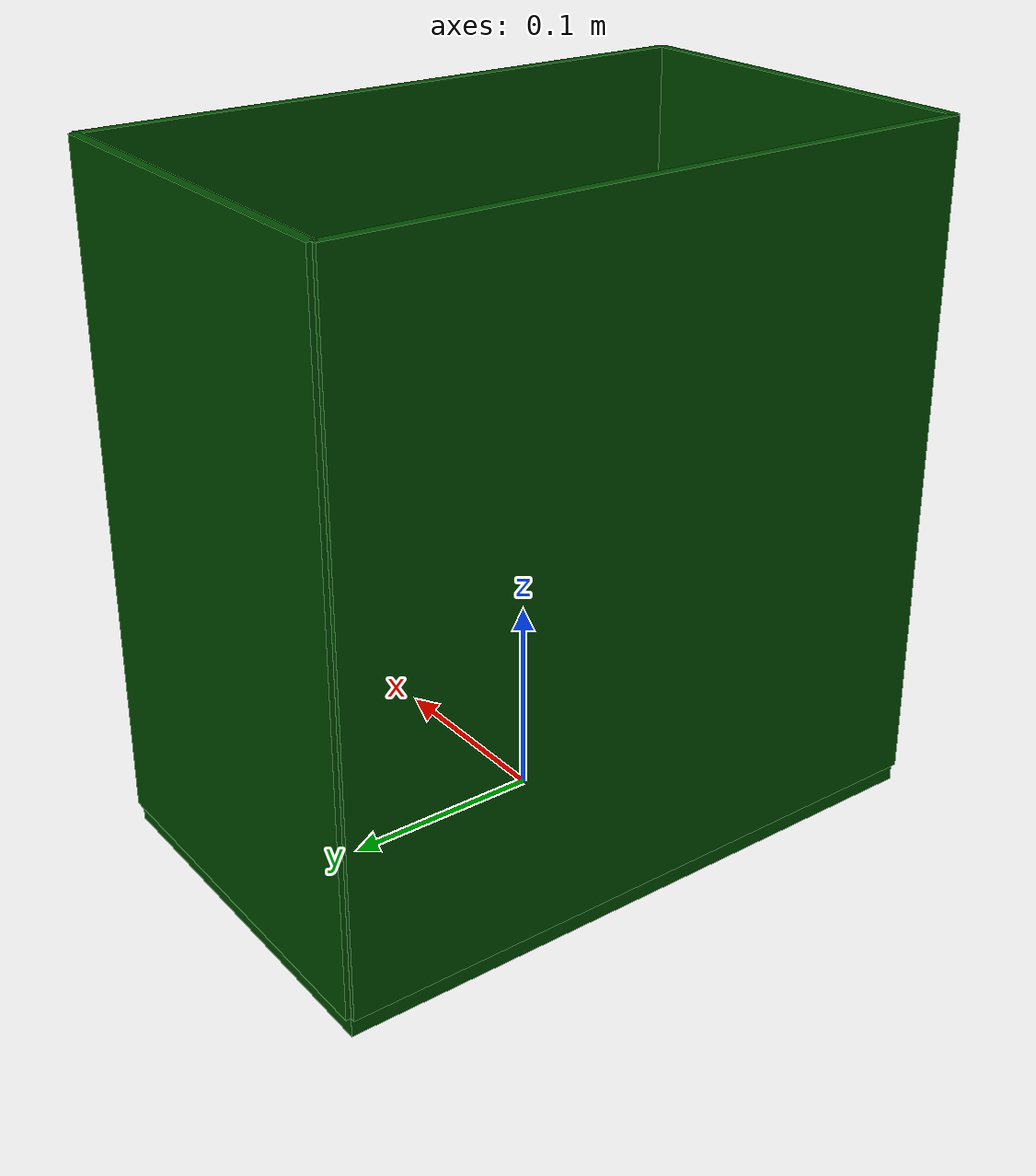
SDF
<?xml version="1.0" ?>
<sdf version="1.6">
  <model name="paperbin">
    <link name="1">
      <collision name="1">
        <geometry>
          <box>
            <size>0.2 0.33 0.02</size>
          </box>
        </geometry>
        <name>1</name>
      </collision>
      <visual name="1">
        <geometry>
          <box>
            <size>0.2 0.33 0.02</size>
          </box>
        </geometry>
        <material>
          <ambient>0 0.3 0 1</ambient>
        </material>
        <name>1</name>
      </visual>
      <pose>0 0 0 0 0 0</pose>
      <name>1</name>
    </link>
    <link name="2">
      <collision name="2">
        <geometry>
          <box>
            <size>0.2 0.005 0.34</size>
          </box>
        </geometry>
        <name>2</name>
      </collision>
      <visual name="2">
        <geometry>
          <box>
            <size>0.2 0.005 0.34</size>
          </box>
        </geometry>
        <material>
          <ambient>0 0.3 0 1</ambient>
        </material>
        <name>2</name>
      </visual>
      <pose>0.0 0.165 0.17 0 0 0</pose>
      <name>2</name>
    </link>
    <link name="3">
      <collision name="3">
        <geometry>
          <box>
            <size>0.005 0.33 0.34</size>
          </box>
        </geometry>
        <name>3</name>
      </collision>
      <visual name="3">
        <geometry>
          <box>
            <size>0.005 0.33 0.34</size>
          </box>
        </geometry>
        <material>
          <ambient>0 0.3 0 1</ambient>
        </material>
        <name>3</name>
      </visual>
      <pose>-0.1 0 0.17 0 0 0</pose>
      <name>3</name>
    </link>
    <link name="4">
      <collision name="4">
        <geometry>
          <box>
            <size>0.2 0.005 0.34</size>
          </box>
        </geometry>
        <name>4</name>
      </collision>
      <visual name="4">
        <geometry>
          <box>
            <size>0.2 0.005 0.34</size>
          </box>
        </geometry>
        <material>
          <ambient>0 0.3 0 1</ambient>
        </material>
        <name>4</name>
      </visual>
      <pose>0.0 -0.165 0.17 0 0 0</pose>
      <name>4</name>
    </link>
    <link name="5">
      <collision name="5">
        <geometry>
          <box>
            <size>0.005 0.33 0.34</size>
          </box>
        </geometry>
        <name>5</name>
      </collision>
      <visual name="5">
        <geometry>
          <box>
            <size>0.005 0.33 0.34</size>
          </box>
        </geometry>
        <material>
          <ambient>0 0.3 0 1</ambient>
        </material>
        <name>5</name>
      </visual>
      <pose>0.1 0.0 0.17 0 0 0</pose>
      <name>5</name>
    </link>
    <link name="in_front_of">
      <virtual_volume name="in_front_of">
        <geometry>
          <box>
            <size>0.4 0.36 0.02</size>
          </box>
        </geometry>
        <pose>0.5 0.0 0.01 0 0 0</pose>
        <name>in_front_of</name>
      </virtual_volume>
      <name>in_front_of</name>
    </link>
    <link name="on_top_of">
      <virtual_volume name="on_top_of">
        <geometry>
          <box>
            <size>0.2 0.33 0.25</size>
          </box>
        </geometry>
        <pose>0.0 0.0 0.475 0 0 0</pose>
        <name>on_top_of</name>
      </virtual_volume>
      <name>on_top_of</name>
    </link>
    <static>true</static>
    <name>paperbin</name>
  </model>
</sdf>
